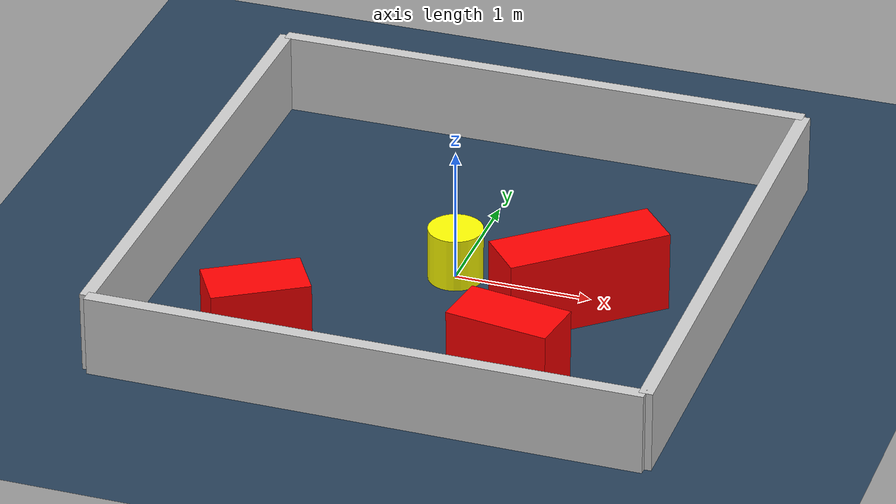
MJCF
<?xml version="1.0" ?>
<mujoco model="generated_environment">
  <option timestep="0.01" integrator="RK4" cone="elliptic"/>
  <default>
    <geom density="1"/>
  </default>
  <asset>
    <texture builtin="gradient" height="3072" rgb1="0.3 0.5 0.7" rgb2="0 0 0" type="skybox" width="512"/>
    <texture builtin="checker" height="300" mark="edge" markrgb="0.8 0.8 0.8" name="groundplane" rgb1="0.2 0.3 0.4" rgb2="0.1 0.2 0.3" type="2d" width="300"/>
    <material name="groundplane" reflectance="0.2" texrepeat="5 5" texture="groundplane" texuniform="true"/>
    <material name="robot" rgba="0.0 1.0 0.0 1"/>
  </asset>
  <worldbody>
    <light dir="0 0 -1" directional="true" pos="0 0 1.5"/>
    <geom condim="4" friction="1.0 0.005 0.001" material="groundplane" name="floor" size="0 0 0.05" type="plane"/>
    <body name="walls">
      <geom name="wall_1" condim="4" pos="-2.0 0.0 0.3" rgba="0.800000011920929 0.800000011920929 0.800000011920929 1.0" size="0.05 2.0 0.3" type="box"/>
      <geom name="wall_2" condim="4" pos="2.0 0.0 0.3" rgba="0.800000011920929 0.800000011920929 0.800000011920929 1.0" size="0.05 2.0 0.3" type="box"/>
      <geom name="wall_3" condim="4" pos="0.0 -2.0 0.3" rgba="0.800000011920929 0.800000011920929 0.800000011920929 1.0" size="2.0 0.05 0.3" type="box"/>
      <geom name="wall_4" condim="4" pos="0.0 2.0 0.3" rgba="0.800000011920929 0.800000011920929 0.800000011920929 1.0" size="2.0 0.05 0.3" type="box"/>
    </body>
    <body name="robot">
      <joint name="joint_x" type="slide" pos="0 0 0" axis="1 0 0"/>
      <joint name="joint_y" type="slide" pos="0 0 0" axis="0 1 0"/>
      <geom name="robot" type="sphere" pos="0.3 0.0 0.2" size="0.05" mass="5." friction="1.0 0.005 0.0001" condim="4" rgba="0.5 0.5 0.5 1.0"/>
      <site name="sensor_ball"/>
    </body>
    <body name="obstacle_movable_1">
      <geom name="obstacle_movable_1" condim="4" pos="0.0 0.0 0.2" euler="0 0 0.0" friction="1.0 0.005 0.001" rgba="1.0 1.0 0.0 1.0" size="0.2 0.2 0.0" type="cylinder" mass="0.1"/>
      <joint type="free"/>
    </body>
    <body name="obstacle_2_static">
      <geom name="obstacle_2_static" condim="4" pos="0.811102398023031 -1.2900187080768606 0.3" euler="0 0 171.26582224589393" friction="1.0 0.005 0.001" rgba="1 0 0 1" size="0.3779216478472277 0.2 0.3" type="box"/>
    </body>
    <body name="obstacle_3_static">
      <geom name="obstacle_3_static" condim="4" pos="-0.9818429883621299 -1.409304703604965 0.3" euler="0 0 211.5686598744651" friction="1.0 0.005 0.001" rgba="1 0 0 1" size="0.35364376986402285 0.2 0.3" type="box"/>
    </body>
    <body name="obstacle_4_static">
      <geom name="obstacle_4_static" condim="4" pos="0.9741470002869836 -0.18197343273393685 0.3" euler="0 0 40.74471048800365" friction="1.0 0.005 0.001" rgba="1 0 0 1" size="0.6042281964678656 0.2 0.3" type="box"/>
    </body>
  </worldbody>
  <actuator>
    <motor name="actuator_x" joint="joint_x" gear="1" ctrlrange="-1 1"/>
    <motor name="actuator_y" joint="joint_y" gear="1" ctrlrange="-1 1"/>
  </actuator>
</mujoco>
